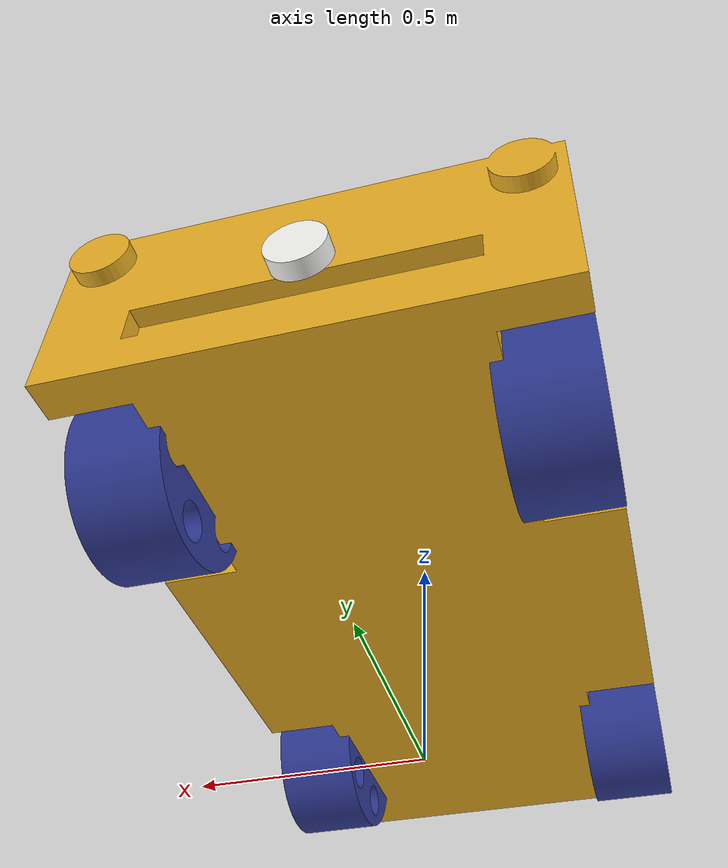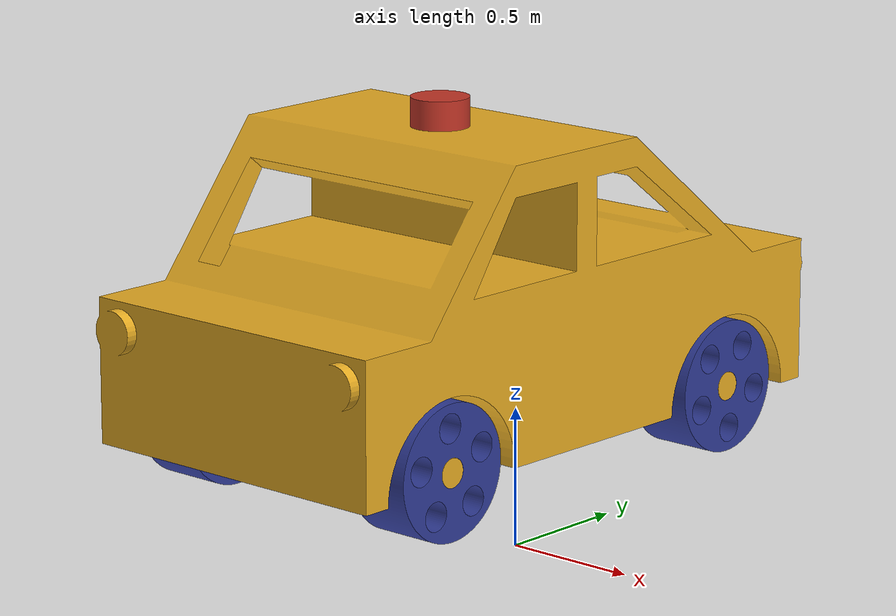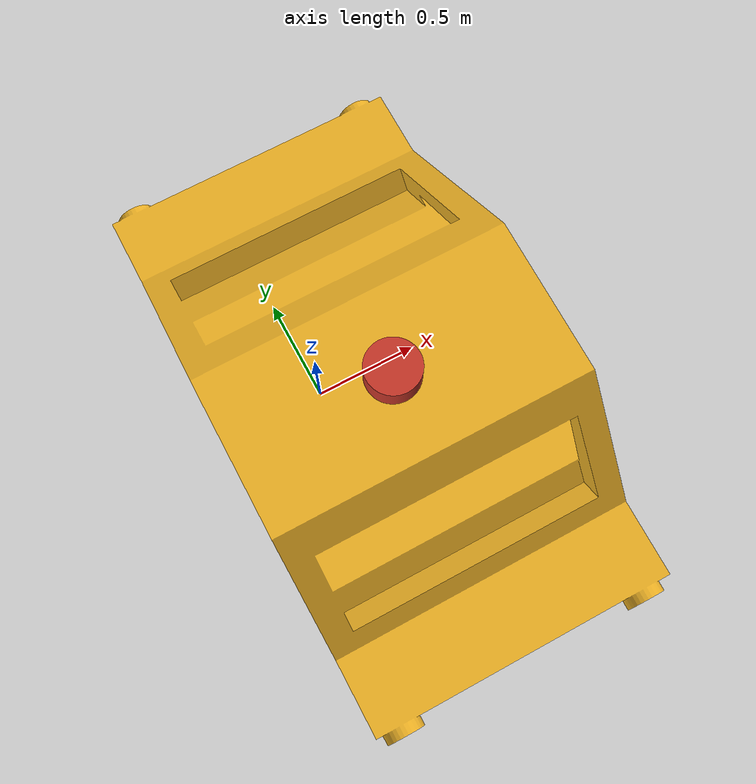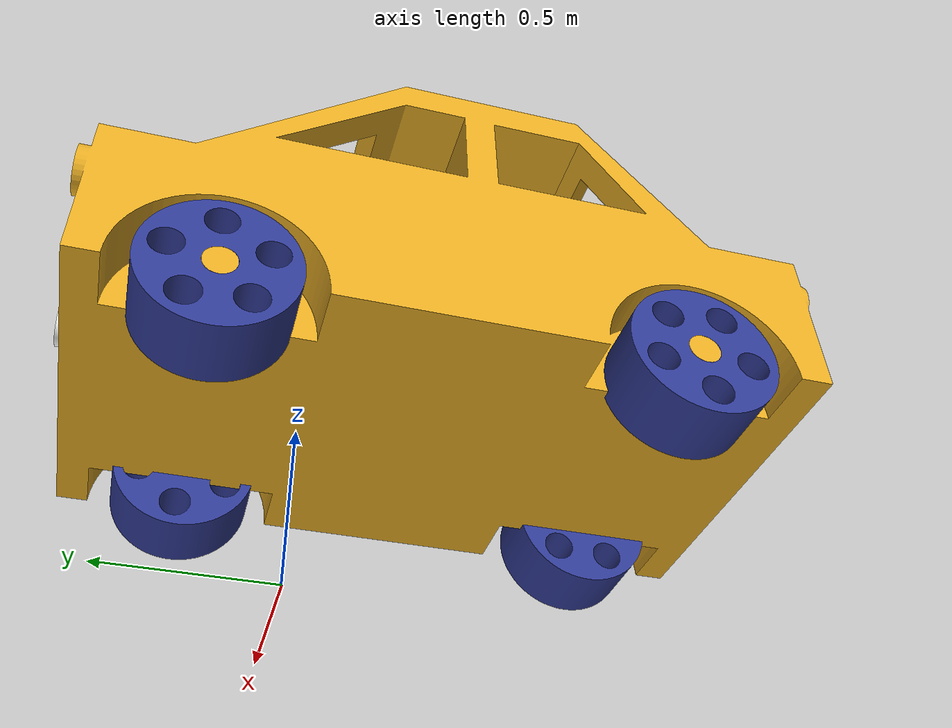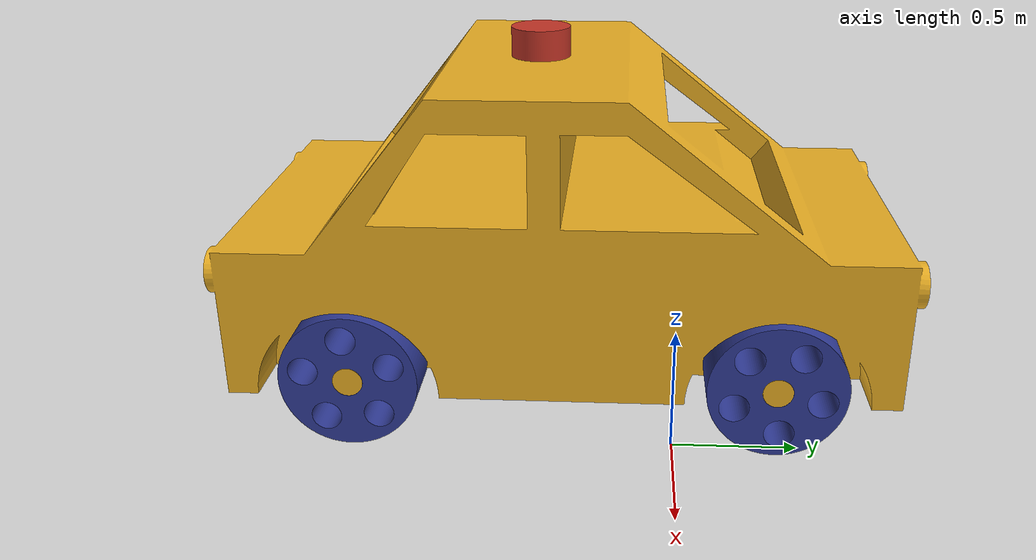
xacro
<?xml version="1.0" ?>
<robot name="newcar" xmlns:xacro="http://www.ros.org/wiki/xacro">

<xacro:include filename="$(find newcar_description)/urdf/materials.xacro" />
<xacro:include filename="$(find newcar_description)/urdf/newcar.trans" />
<xacro:include filename="$(find newcar_description)/urdf/gazebo.xacro" />
<xacro:include filename="$(find newcar_description)/urdf/lidar.xacro" />
<xacro:include filename="$(find newcar_description)/urdf/gazebo_control.xacro" />
<xacro:include filename="$(find newcar_description)/urdf/camera.xacro" />
<link name="base_link"></link>
<link name="chassis">
  <inertial>
    <origin xyz="0.09999999999999895 -0.41172509573212546 0.9489114115806402" rpy="0 0 0"/>
    <mass value="11894.478895245358"/>
    <inertia ixx="4655.696852" iyy="1985.394061" izz="5356.330131" ixy="0.0" iyz="43.457842" ixz="-0.0"/>
  </inertial>
  <visual>
    <origin xyz="0 0 0" rpy="0 0 0"/>
    <geometry>
      <mesh filename="file://$(find newcar_description)/meshes/base_link.stl" scale="0.01 0.01 0.01"/>
    </geometry>
    <material name="paint_metallic_yellow"/>
  </visual>
  <collision>
    <origin xyz="0 0 0" rpy="0 0 0"/>
    <geometry>
      <mesh filename="file://$(find newcar_description)/meshes/base_link.stl" scale="0.01 0.01 0.01"/>
    </geometry>
  </collision>
</link>

<link name="flwheel_1">
  <inertial>
    <origin xyz="0.11499999999999866 -3.3306690738754696e-16 4.440892098500626e-16" rpy="0 0 0"/>
    <mass value="214.97431581653674"/>
    <inertia ixx="6.234851" iyy="4.065104" izz="4.065104" ixy="-0.0" iyz="0.0" ixz="0.0"/>
  </inertial>
  <visual>
    <origin xyz="0.5 -0.3 -0.65" rpy="0 0 0"/>
    <geometry>
      <mesh filename="file://$(find newcar_description)/meshes/flwheel_1.stl" scale="0.01 0.01 0.01"/>
    </geometry>
    <material name="paint_enamel_glossy_blue"/>
  </visual>
  <collision>
    <origin xyz="0.5 -0.3 -0.65" rpy="0 0 0"/>
    <geometry>
      <mesh filename="file://$(find newcar_description)/meshes/flwheel_1.stl" scale="0.01 0.01 0.01"/>
    </geometry>
  </collision>
</link>

<link name="blwheel_1">
  <inertial>
    <origin xyz="0.11500000000000155 6.661338147750939e-16 2.220446049250313e-16" rpy="0 0 0"/>
    <mass value="214.9743158165368"/>
    <inertia ixx="6.234851" iyy="4.065104" izz="4.065104" ixy="0.0" iyz="-0.0" ixz="0.0"/>
  </inertial>
  <visual>
    <origin xyz="0.5 1.1 -0.65" rpy="0 0 0"/>
    <geometry>
      <mesh filename="file://$(find newcar_description)/meshes/blwheel_1.stl" scale="0.01 0.01 0.01"/>
    </geometry>
    <material name="paint_enamel_glossy_blue"/>
  </visual>
  <collision>
    <origin xyz="0.5 1.1 -0.65" rpy="0 0 0"/>
    <geometry>
      <mesh filename="file://$(find newcar_description)/meshes/blwheel_1.stl" scale="0.01 0.01 0.01"/>
    </geometry>
  </collision>
</link>

<link name="brwheel_1">
  <inertial>
    <origin xyz="-0.114999999999997 3.1086244689504383e-15 7.105427357601002e-15" rpy="0 0 0"/>
    <mass value="34.23157895167783"/>
    <inertia ixx="0.992811" iyy="0.64731" izz="0.64731" ixy="0.0" iyz="0.0" ixz="0.0"/>
  </inertial>
  <visual>
    <origin xyz="-0.7 1.1 -0.65" rpy="0 0 0"/>
    <geometry>
      <mesh filename="file://$(find newcar_description)/meshes/brwheel_1.stl" scale="0.01 0.01 0.01"/>
    </geometry>
    <material name="paint_enamel_glossy_blue"/>
  </visual>
  <collision>
    <origin xyz="-0.7 1.1 -0.65" rpy="0 0 0"/>
    <geometry>
      <mesh filename="file://$(find newcar_description)/meshes/brwheel_1.stl" scale="0.01 0.01 0.01"/>
    </geometry>
  </collision>
</link>

<link name="frwheel_1">
  <inertial>
    <origin xyz="-0.11499999999999977 2.3869795029440866e-15 7.216449660063518e-15" rpy="0 0 0"/>
    <mass value="34.23157895167784"/>
    <inertia ixx="0.992811" iyy="0.64731" izz="0.64731" ixy="0.0" iyz="0.0" ixz="0.0"/>
  </inertial>
  <visual>
    <origin xyz="-0.7 -0.3 -0.65" rpy="0 0 0"/>
    <geometry>
      <mesh filename="file://$(find newcar_description)/meshes/frwheel_1.stl" scale="0.01 0.01 0.01"/>
    </geometry>
    <material name="paint_enamel_glossy_blue"/>
  </visual>
  <collision>
    <origin xyz="-0.7 -0.3 -0.65" rpy="0 0 0"/>
    <geometry>
      <mesh filename="file://$(find newcar_description)/meshes/frwheel_1.stl" scale="0.01 0.01 0.01"/>
    </geometry>
  </collision>
</link>

<link name="camera_1">
  <inertial>
    <origin xyz="-3.094746681142624e-15 0.025000000000001465 3.885780586188048e-15" rpy="0 0 0"/>
    <mass value="1.9261889957322356"/>
    <inertia ixx="0.00311" iyy="0.005417" izz="0.00311" ixy="0.0" iyz="-0.0" ixz="0.0"/>
  </inertial>
  <visual>
    <origin xyz="-0.1 -0.7 -0.85" rpy="0 0 0"/>
    <geometry>
      <mesh filename="file://$(find newcar_description)/meshes/camera_1.stl" scale="0.01 0.01 0.01"/>
    </geometry>
    <material name="silicone_white"/>
  </visual>
  <collision>
    <origin xyz="-0.1 -0.7 -0.85" rpy="0 0 0"/>
    <geometry>
      <mesh filename="file://$(find newcar_description)/meshes/camera_1.stl" scale="0.01 0.01 0.01"/>
    </geometry>
  </collision>
</link>

<link name="lidar_1">
  <inertial>
    <origin xyz="-1.1726730697603216e-14 1.6653345369377348e-16 0.0500000000000036" rpy="0 0 0"/>
    <mass value="4.335397861953915"/>
    <inertia ixx="0.014451" iyy="0.014451" izz="0.021677" ixy="-0.0" iyz="0.0" ixz="0.0"/>
  </inertial>
  <visual>
    <origin xyz="-0.1 0.5 -1.6" rpy="0 0 0"/>
    <geometry>
      <mesh filename="file://$(find newcar_description)/meshes/lidar_1.stl" scale="0.01 0.01 0.01"/>
    </geometry>
    <material name="plastic_matte_red"/>
  </visual>
  <collision>
    <origin xyz="-0.1 0.5 -1.6" rpy="0 0 0"/>
    <geometry>
      <mesh filename="file://$(find newcar_description)/meshes/lidar_1.stl" scale="0.01 0.01 0.01"/>
    </geometry>
  </collision>
</link>

<joint name="Revolute 1" type="continuous">
  <origin xyz="-0.5 0.3 0.65" rpy="-0.707 0 0"/>
  <parent link="base_link"/>
  <child link="flwheel_1"/>
  <axis xyz="-1.0 -0.0 -0.0"/>
</joint>

<joint name="Revolute 2" type="continuous">
  <origin xyz="-0.5 -1.1 0.65" rpy="-0.707 0 0"/>
  <parent link="base_link"/>
  <child link="blwheel_1"/>
  <axis xyz="-1.0 -0.0 -0.0"/>
</joint>

<joint name="Revolute 3" type="continuous">
  <origin xyz="0.7 -1.1 0.65" rpy="0.707 0 0"/>
  <parent link="base_link"/>
  <child link="brwheel_1"/>
  <axis xyz="1.0 0.0 0.0"/>
</joint>

<joint name="Revolute 4" type="continuous">
  <origin xyz="0.7 0.3 0.65" rpy="0.707 0 0"/>
  <parent link="base_link"/>
  <child link="frwheel_1"/>
  <axis xyz="1.0 0.0 0.0"/>
</joint>

<joint name="Rigid 5" type="fixed">
  <origin xyz="0.1 0.7 0.85" rpy="0 0 0"/>
  <parent link="base_link"/>
  <child link="camera_1"/>
</joint>

<joint name="Rigid 6" type="fixed">
  <origin xyz="0.1 -0.5 1.6" rpy="0 0 0"/>
  <parent link="base_link"/>
  <child link="lidar_1"/>
</joint>
<joint name="chassis_joint" type="fixed">
  <origin xyz="0.0 0.0 0.0" rpy="0 0 0"/>
  <parent link="base_link"/>
  <child link="chassis"/>
  <axis xyz="-1.0 0.0 0.0"/>
</joint>
</robot>

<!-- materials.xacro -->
<robot name="newcar" xmlns:xacro="http://www.ros.org/wiki/xacro" >

<material name="silver_default">
  <color rgba="0.700 0.700 0.700 1.000"/>
</material>
<material name="paint_metallic_yellow">
  <color rgba="0.9098039215686274 0.6784313725490196 0.13725490196078433 1.0"/>
</material>
<material name="paint_enamel_glossy_blue">
  <color rgba="0.18823529411764706 0.23137254901960785 0.5882352941176471 0.0"/>
</material>
<material name="silicone_white">
  <color rgba="0.9647058823529412 0.9647058823529412 0.9529411764705882 1.0"/>
</material>
<material name="plastic_matte_red">
  <color rgba="0.7686274509803922 0.20784313725490197 0.15294117647058825 1.0"/>
</material>

</robot>
